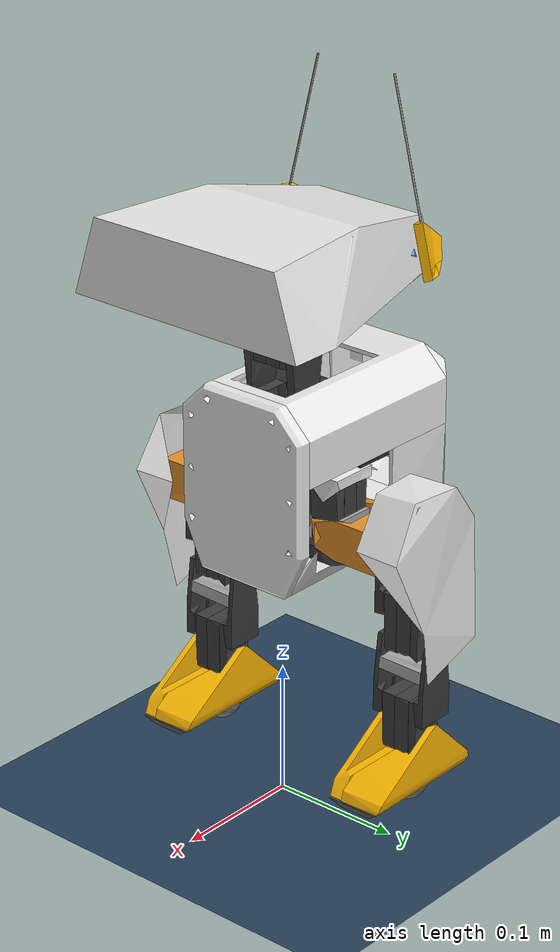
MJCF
<mujoco model="bd1 scene">
	<!-- 100 hz -->
	<include file="open_duck_mini_v2.xml" />
	<default>
		<!-- sliding friction, torsional friction, rolling friction -->
		<geom friction="1.5 0.01 0.0006"/>
	</default>
	<visual>
		<headlight diffuse="0.6 0.6 0.6" ambient="0.3 0.3 0.3" specular="0 0 0" />
		<rgba haze="0.15 0.25 0.35 1" />
		<global azimuth="150" elevation="-20" />
	</visual>
	<asset>
		<texture type="skybox" builtin="gradient" rgb1="0.3 0.5 0.7" rgb2="0 0 0" width="512" height="3072" />
		<texture type="2d" name="groundplane" builtin="checker" mark="edge" rgb1="0.2 0.3 0.4" rgb2="0.1 0.2 0.3" markrgb="0.8 0.8 0.8" width="300" height="300" />
		<material name="groundplane" texture="groundplane" texuniform="true" texrepeat="5 5" reflectance="0.2" />
	</asset>
	<worldbody>
		<light pos="0 0 3" dir="0 0 -1" directional="false" />
		<body name="floor">
			<geom pos="0 0 0" name="floor" size="0 0 .125" type="plane" material="groundplane" conaffinity="1" contype="1" />
		</body>
	</worldbody>
</mujoco>

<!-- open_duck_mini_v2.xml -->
<mujoco model="open_duck_mini_v2">

  <option iterations="1" ls_iterations="5">
    <flag eulerdamp="disable"/>
  </option>

  <compiler angle="radian"/>
  <asset>
    <mesh name="body_front" file="assets/body_front_s.stl" maxhullvert="20"/>
    <mesh name="usb_c_charger" file="assets/usb_c_charger.stl" maxhullvert="20"/>
    <mesh name="body_back" file="assets/body_back_s.stl" maxhullvert="20"/>
    <mesh name="body_middle_bottom" file="assets/body_middle_bottom_s.stl" maxhullvert="20"/>
    <mesh name="power_switch" file="assets/power_switch.stl" maxhullvert="20"/>
    <mesh name="bms" file="assets/bms.stl" maxhullvert="20"/>
    <mesh name="battery_pack_lid" file="assets/battery_pack_lid_s.stl" maxhullvert="20"/>
    <mesh name="body_middle_top" file="assets/body_middle_top_s.stl" maxhullvert="20"/>
    <mesh name="bno055" file="assets/bno055_s.stl" maxhullvert="20"/>
    <mesh name="roll_bearing" file="assets/roll_bearing.stl" maxhullvert="20"/>
    <mesh name="trunk_bottom" file="assets/trunk_bottom_s.stl" maxhullvert="20"/>
    <mesh name="trunk_top" file="assets/trunk_top_s.stl" maxhullvert="20"/>
    <mesh name="board" file="assets/board_s.stl" maxhullvert="20"/>
    <mesh name="cell" file="assets/cell_s.stl" maxhullvert="20"/>
    <mesh name="holder" file="assets/holder.stl" maxhullvert="20"/>
    <mesh name="wj-wk00-0123middlecase_56" file="assets/wj-wk00-0123middlecase_56_s.stl" maxhullvert="20"/>
    <mesh name="drive_palonier" file="assets/drive_palonier.stl" maxhullvert="20"/>
    <mesh name="wj-wk00-0124bottomcase_45" file="assets/wj-wk00-0124bottomcase_45_s.stl" maxhullvert="20"/>
    <mesh name="wj-wk00-0122topcabinetcase_95" file="assets/wj-wk00-0122topcabinetcase_95_s.stl" maxhullvert="20"/>
    <mesh name="passive_palonier" file="assets/passive_palonier.stl" maxhullvert="20"/>
    <mesh name="roll_motor_bottom" file="assets/roll_motor_bottom_s.stl" maxhullvert="20"/>
    <mesh name="roll_motor_top" file="assets/roll_motor_top_s.stl" maxhullvert="20"/>
    <mesh name="left_roll_to_pitch" file="assets/left_roll_to_pitch_s.stl" maxhullvert="20"/>
    <mesh name="left_cache" file="assets/left_cache_s.stl" maxhullvert="20"/>
    <mesh name="leg_spacer" file="assets/leg_spacer_s.stl" maxhullvert="20"/>
    <mesh name="left_knee_to_ankle_right_sheet" file="assets/left_knee_to_ankle_right_sheet_s.stl" maxhullvert="20"/>
    <mesh name="left_knee_to_ankle_left_sheet" file="assets/left_knee_to_ankle_left_sheet_s.stl" maxhullvert="20"/>
    <mesh name="foot_side" file="assets/foot_side_s.stl" maxhullvert="20"/>
    <mesh name="foot_bottom_tpu" file="assets/foot_bottom_tpu_s.stl" maxhullvert="20"/>
    <mesh name="foot_bottom_pla" file="assets/foot_bottom_pla_s.stl" maxhullvert="20"/>
    <mesh name="foot_top" file="assets/foot_top_s.stl" maxhullvert="20"/>
    <mesh name="right_roll_to_pitch" file="assets/right_roll_to_pitch_s.stl" maxhullvert="20"/>
    <mesh name="right_cache" file="assets/right_cache_s.stl" maxhullvert="20"/>
    <mesh name="neck_left_sheet" file="assets/neck_left_sheet_s.stl" maxhullvert="20"/>
    <mesh name="neck_right_sheet" file="assets/neck_right_sheet_s.stl" maxhullvert="20"/>
    <mesh name="head_pitch_to_yaw" file="assets/head_pitch_to_yaw_s.stl" maxhullvert="20"/>
    <mesh name="head_yaw_to_roll" file="assets/head_yaw_to_roll_s.stl" maxhullvert="20"/>
    <mesh name="head_bot_sheet" file="assets/head_bot_sheet_s.stl" maxhullvert="20"/>
    <mesh name="head" file="assets/head_s.stl" maxhullvert="20"/>
    <mesh name="head_roll_mount" file="assets/head_roll_mount_s.stl" maxhullvert="20"/>
    <mesh name="raspberrypizerow" file="assets/raspberrypizerow.stl" maxhullvert="20"/>
    <mesh name="sg90" file="assets/sg90_s.stl" maxhullvert="20"/>
    <mesh name="antenna" file="assets/antenna_s.stl" maxhullvert="20"/>
    <mesh name="left_antenna_holder" file="assets/left_antenna_holder_s.stl" maxhullvert="20"/>
    <mesh name="right_antenna_holder" file="assets/right_antenna_holder_s.stl" maxhullvert="20"/>

  </asset>
  <default>
    <geom contype="0" conaffinity="0"/>
    <joint damping="0.65" frictionloss="0.083" armature="0.027"/>
    <position kp="6.55" kv="0" forcerange="-3.57 3.57"/>
  </default>
  <contact>
    <exclude name="exclude1" body1="trunk_assembly" body2="neck_yaw_assembly"/>
    <exclude name="exclude2" body1="trunk_assembly" body2="hip_roll_assembly"/>
    <exclude name="exclude3" body1="trunk_assembly" body2="hip_roll_assembly_2"/>
    <exclude name="exclude4" body1="hip_roll_assembly" body2="left_roll_to_pitch_assembly"/>
    <exclude name="exclude5" body1="hip_roll_assembly_2" body2="right_roll_to_pitch_assembly"/>
    <exclude name="exclude6" body1="trunk_assembly" body2="left_roll_to_pitch_assembly"/>
    <exclude name="exclude7" body1="trunk_assembly" body2="right_roll_to_pitch_assembly"/>
    <exclude name="exclude8" body1="neck_yaw_assembly" body2="head_pitch_to_yaw"/>
    <exclude name="exclude9" body1="neck_yaw_assembly" body2="head_assembly"/>
    <exclude name="exclude10" body1="head_pitch_to_yaw" body2="head_assembly"/>
  </contact>
  <worldbody>
    <body name="base" pos="0 0 0.22">
      <freejoint />
      <site name="imu" pos="-0.08 -0.0 0.05"/>
      <camera name="front" pos="1.210 -0.435 0.32" xyaxes="0.342 0.940 0.000 -0.321 0.117 0.940" mode="trackcom"/>
      <camera name="track" pos="0.805 -1.105 0.2" xyaxes="0.814 0.580 0.000 -0.140 0.196 0.971" mode="trackcom"/>
      <body name="trunk_assembly">
        <inertial pos="-0.0483259 -9.97823e-05 0.0384971" quat="0.505499 0.490695 0.496207 0.507413" mass="0.698526" diaginertia="0.00344489 0.00292719 0.00167606"/>
        <geom pos="-0.019 0 0.0648909" type="mesh" rgba="0.917647 0.917647 0.917647 1" mesh="body_front"/>
        <geom pos="-0.019 0 0.0648909" type="mesh" rgba="0.917647 0.917647 0.917647 1" mesh="body_back"/>
        <geom pos="-0.019 0 0.0648909" type="mesh" rgba="0.917647 0.917647 0.917647 1" mesh="body_middle_bottom"/>
        <geom pos="-0.019 0 0.0648909" type="mesh" rgba="0.917647 0.917647 0.917647 1" mesh="body_middle_top"/>

        <geom pos="-0.019 0 0.0648909" type="mesh" rgba="0.180392 0.180392 0.180392 1" mesh="trunk_bottom"/>
        <geom pos="-0.019 0 0.0648909" type="mesh" rgba="0.180392 0.180392 0.180392 1" mesh="trunk_top"/>
        <geom pos="-0.06349 0.0165 0.0603909" quat="0 0 0 -1" type="mesh" rgba="0 0.501961 0 1" mesh="board"/>

        <geom pos="0.001 0.0097 0.0645009" quat="0.707107 0 0.707107 0" type="mesh" rgba="0.247059 0.243137 0.243137 1" mesh="wj-wk00-0123middlecase_56"/>
        <geom pos="0.001 0.0097 0.0645009" quat="0.707107 0 0.707107 0" type="mesh" rgba="0.247059 0.243137 0.243137 1" mesh="wj-wk00-0124bottomcase_45"/>
        <geom pos="0.001 0.0097 0.0645009" quat="0.707107 0 0.707107 0" type="mesh" rgba="0.247059 0.243137 0.243137 1" mesh="wj-wk00-0122topcabinetcase_95"/>
        <geom pos="-0.0445 -0.035 0.0553909" quat="0 0 -0.707107 0.707107" type="mesh" rgba="0.247059 0.243137 0.243137 1" mesh="wj-wk00-0123middlecase_56"/>
        <geom pos="-0.0445 -0.035 0.0553909" quat="0 0 -0.707107 0.707107" type="mesh" rgba="0.247059 0.243137 0.243137 1" mesh="wj-wk00-0124bottomcase_45"/>
        <geom pos="-0.0445 -0.035 0.0553909" quat="0 0 -0.707107 0.707107" type="mesh" rgba="0.247059 0.243137 0.243137 1" mesh="wj-wk00-0122topcabinetcase_95"/>
        <geom pos="-0.0445 0.035 0.0553909" quat="0 0 0.707107 -0.707107" type="mesh" rgba="0.247059 0.243137 0.243137 1" mesh="wj-wk00-0123middlecase_56"/>
        <geom pos="-0.0445 0.035 0.0553909" quat="0 0 0.707107 -0.707107" type="mesh" rgba="0.247059 0.243137 0.243137 1" mesh="wj-wk00-0124bottomcase_45"/>
        <geom pos="-0.0445 0.035 0.0553909" quat="0 0 0.707107 -0.707107" type="mesh" rgba="0.247059 0.243137 0.243137 1" mesh="wj-wk00-0122topcabinetcase_95"/>
        <body name="trunk" pos="-0.024 0 0.0881909">
          <inertial pos="0 0 0" mass="1e-09" diaginertia="0 0 0"/>
        </body>
        <body name="hip_roll_assembly" pos="-0.019 0.035 0.0459409" quat="1 0 0 0">
          <inertial pos="0.000795081 -5.46541e-06 -0.03306" quat="0.70723 0.0130259 0.0134112 0.706737" mass="0.06648" diaginertia="2.81818e-05 2.44554e-05 1.42544e-05"/>
          <joint name="left_hip_yaw" pos="0 0 0" axis="0 0 1" range="-0.523599 0.523599" />
          <geom pos="0 -0.035 0.01905" quat="1 0 0 0" type="mesh" rgba="0.647059 0.647059 0.647059 1" mesh="roll_motor_bottom"/>
          <geom pos="0 -0.035 0.01905" type="mesh" rgba="0.901961 0.901961 0.901961 1" mesh="roll_motor_top"/>
          <geom pos="0.0096 0 -0.020515" quat="0.5 -0.5 -0.5 -0.5" type="mesh" rgba="0.247059 0.243137 0.243137 1" mesh="wj-wk00-0123middlecase_56"/>
          <geom pos="0.0096 0 -0.020515" quat="0.5 -0.5 -0.5 -0.5" type="mesh" rgba="0.247059 0.243137 0.243137 1" mesh="wj-wk00-0124bottomcase_45"/>
          <geom pos="0.0096 0 -0.020515" quat="0.5 -0.5 -0.5 -0.5" type="mesh" rgba="0.247059 0.243137 0.243137 1" mesh="wj-wk00-0122topcabinetcase_95"/>
          <body name="left_roll_to_pitch_assembly" pos="0.01905 0 -0.046015" quat="0.5 -0.5 -0.5 0.5">
            <inertial pos="0.0508042 -0.00041105 0.0204704" quat="0.549997 0.448819 0.449902 0.541898" mass="0.07516" diaginertia="4.13874e-05 2.82416e-05 2.5117e-05"/>
            <joint name="left_hip_roll" pos="0 0 0" axis="0 0 1" range="-0.436332 0.436332" />
            <geom pos="-0.035 -0.065 0.01905" quat="0.5 0.5 0.5 -0.5" type="mesh" rgba="0.909804 0.572549 0.164706 1" mesh="left_roll_to_pitch"/>
            <geom pos="0.0647 0 0.00961" quat="0.5 0.5 0.5 -0.5" type="mesh" rgba="0.247059 0.243137 0.243137 1" mesh="wj-wk00-0123middlecase_56"/>
            <geom pos="0.0647 0 0.00961" quat="0.5 0.5 0.5 -0.5" type="mesh" rgba="0.247059 0.243137 0.243137 1" mesh="wj-wk00-0124bottomcase_45"/>
            <geom pos="0.0647 0 0.00961" quat="0.5 0.5 0.5 -0.5" type="mesh" rgba="0.247059 0.243137 0.243137 1" mesh="wj-wk00-0122topcabinetcase_95"/>
            <body name="knee_and_ankle_assembly" pos="0.07415 0 0.03511" quat="0 0.707107 0 -0.707107">
              <inertial pos="0.00253369 -0.0390636 0.0102776" quat="0.576793 0.413738 -0.51125 0.484515" mass="0.12407" diaginertia="0.000228502 0.000216625 7.02746e-05"/>
              <joint name="left_hip_pitch" pos="0 0 0" axis="0 0 1" range="-1.22173 0.523599" />
              <geom pos="0.01606 0.065 0.10915" quat="0.707107 -0.707107 0 0" type="mesh" rgba="0.917647 0.917647 0.917647 1" mesh="left_cache"/>
              <geom pos="0.01606 0.14365 0.10925" quat="0.707107 -0.707107 0 0" type="mesh" rgba="0.647059 0.647059 0.647059 1" mesh="leg_spacer"/>
              <geom pos="0.01606 0.14365 0.10915" quat="0.707107 -0.707107 0 0" type="mesh" rgba="0.223529 0.219608 0.219608 1" mesh="left_knee_to_ankle_right_sheet"/>
              <geom pos="0.01606 0.14365 0.10915" quat="0.707107 -0.707107 0 0" type="mesh" rgba="0.223529 0.219608 0.219608 1" mesh="left_knee_to_ankle_left_sheet"/>
              <geom pos="0 -0.05315 0.00955" quat="0.5 -0.5 -0.5 0.5" type="mesh" rgba="0.247059 0.243137 0.243137 1" mesh="wj-wk00-0123middlecase_56"/>
              <geom pos="0 -0.05315 0.00955" quat="0.5 -0.5 -0.5 0.5" type="mesh" rgba="0.247059 0.243137 0.243137 1" mesh="wj-wk00-0124bottomcase_45"/>
              <geom pos="0 -0.05315 0.00955" quat="0.5 -0.5 -0.5 0.5" type="mesh" rgba="0.247059 0.243137 0.243137 1" mesh="wj-wk00-0122topcabinetcase_95"/>
              <body name="knee_and_ankle_assembly_2" pos="0 -0.07865 0.0001">
                <inertial pos="5.01859e-06 -0.0577465 0.0181136" quat="0.708422 0.705789 1.07934e-05 0.00022447" mass="0.07259" diaginertia="4.99575e-05 4.23935e-05 1.8727e-05"/>
                <joint name="left_knee" pos="0 0 0" axis="0 0 1" range="-1.5708 1.5708" />
                <geom pos="0.01606 0.14365 0.10925" quat="0.707107 -0.707107 0 0" type="mesh" rgba="0.647059 0.647059 0.647059 1" mesh="leg_spacer"/>
                <geom pos="0.01606 0.14365 0.10915" quat="0.707107 -0.707107 0 0" type="mesh" rgba="0.223529 0.219608 0.219608 1" mesh="left_knee_to_ankle_right_sheet"/>
                <geom pos="0.01606 0.14365 0.10915" quat="0.707107 -0.707107 0 0" type="mesh" rgba="0.223529 0.219608 0.219608 1" mesh="left_knee_to_ankle_left_sheet"/>
                <geom pos="0 -0.05315 0.00955" quat="0.5 -0.5 -0.5 0.5" type="mesh" rgba="0.247059 0.243137 0.243137 1" mesh="wj-wk00-0123middlecase_56"/>
                <geom pos="0 -0.05315 0.00955" quat="0.5 -0.5 -0.5 0.5" type="mesh" rgba="0.247059 0.243137 0.243137 1" mesh="wj-wk00-0124bottomcase_45"/>
                <geom pos="0 -0.05315 0.00955" quat="0.5 -0.5 -0.5 0.5" type="mesh" rgba="0.247059 0.243137 0.243137 1" mesh="wj-wk00-0122topcabinetcase_95"/>
                <body name="foot_assembly" pos="0 -0.07865 0.0001">
                  <inertial pos="0.0110718 -0.0246608 0.0190626" quat="0.506106 0.51004 0.489653 0.49392" mass="0.07524" diaginertia="6.74949e-05 6.06095e-05 1.86965e-05"/>
                  <joint name="left_ankle" pos="0 0 0" axis="0 0 1" range="-1.5708 1.5708" />
                  <geom pos="0.01606 0.2223 0.10905" quat="0.707107 -0.707107 0 0" type="mesh" rgba="0.980392 0.713726 0.00392157 1" mesh="foot_side"/>
                  <geom pos="0.01656 0.2228 0.10955" quat="0.707107 -0.707107 0 0" type="mesh" rgba="0.305882 0.298039 0.278431 1" mesh="foot_bottom_tpu" name="left_foot_bottom_tpu" contype="0" conaffinity="1" solimp="0.015 1 0.031" friction="0.8 0.02 0.01"/>
                  <geom pos="0.01656 0.2228 0.10955" quat="0.707107 -0.707107 0 0" type="mesh" rgba="0.305882 0.298039 0.278431 1" mesh="foot_bottom_pla" />
                  <geom pos="0.01606 0.2223 0.10905" quat="0.707107 -0.707107 0 0" type="mesh" rgba="0.980392 0.713726 0.00392157 1" mesh="foot_top"/>
                  <body name="left_foot" pos="0.0005 -0.036225 0.01955" quat="0.707107 -0.707107 0 0">
                    <inertial pos="0 0 0" mass="1e-09" diaginertia="0 0 0"/>
                  </body>
                  <site name="left_foot" size="0.015" pos="0.00049999999999996574962 -0.036224999999999729638 0.01955000000000034488"/>
                </body>
              </body>
            </body>
          </body>
        </body>
        <body name="neck_pitch_assembly" pos="0.001 0.01915 0.0900009" quat="0.707107 0.707107 0 0">
          <inertial pos="-5.63137e-06 0.0492968 0.0181786" quat="0.70651 0.707703 0.000283172 6.23387e-05" mass="0.06618" diaginertia="3.49456e-05 2.80043e-05 1.70231e-05"/>
          <joint name="neck_pitch" pos="0 0 0" axis="0 0 1" range="-0.349066 1.13446" />
          <geom pos="-0.02 -0.02511 0.01905" quat="0.707107 -0.707107 0 0" type="mesh" rgba="0.223529 0.219608 0.219608 1" mesh="neck_left_sheet"/>
          <geom pos="-0.02 -0.02511 0.01905" quat="0.707107 -0.707107 0 0" type="mesh" rgba="0.223529 0.219608 0.219608 1" mesh="neck_right_sheet"/>
          <geom pos="0 0.0405 0.00945" quat="0.5 -0.5 0.5 -0.5" type="mesh" rgba="0.247059 0.243137 0.243137 1" mesh="wj-wk00-0123middlecase_56"/>
          <geom pos="0 0.0405 0.00945" quat="0.5 -0.5 0.5 -0.5" type="mesh" rgba="0.247059 0.243137 0.243137 1" mesh="wj-wk00-0124bottomcase_45"/>
          <geom pos="0 0.0405 0.00945" quat="0.5 -0.5 0.5 -0.5" type="mesh" rgba="0.247059 0.243137 0.243137 1" mesh="wj-wk00-0122topcabinetcase_95"/>
          <body name="head_pitch_to_yaw" pos="0 0.066 0" quat="1 0 0 0">
            <inertial pos="-0.00766247 0.026015 0.0186681" quat="0.692632 0.709794 0.0901532 0.091239" mass="0.0169378" diaginertia="9.7861e-06 8.03124e-06 4.28979e-06"/>
            <joint name="head_pitch" pos="0 0 0" axis="0 0 1" range="-0.785398 0.785398" />
            <geom pos="-0.02 -0.09111 0.01905" quat="0.707107 -0.707107 0 0" type="mesh" rgba="0.4 0.4 0.4 1" mesh="head_pitch_to_yaw"/>
            <body name="neck_yaw_assembly" pos="0 0.057 0.01905" quat="0.707107 -0.707107 0 0">
              <inertial pos="0.00412907 3.95745e-06 -0.0222828" quat="-0.00110425 0.66693 -0.00105488 0.745118" mass="0.0918099" diaginertia="7.08927e-05 6.94935e-05 3.06805e-05"/>
              <joint name="head_yaw" pos="0 0 0" axis="0 0 1" range="-2.79253 2.79253" />
              <geom pos="-0.02 0 -0.14821" quat="1 0 0 0" type="mesh" rgba="0.647059 0.647059 0.647059 1" mesh="head_yaw_to_roll"/>
              <geom pos="0.0255 0 -0.00945" quat="0.707107 0.707107 0 0" type="mesh" rgba="0.247059 0.243137 0.243137 1" mesh="wj-wk00-0123middlecase_56"/>
              <geom pos="0.0255 0 -0.00945" quat="0.707107 0.707107 0 0" type="mesh" rgba="0.247059 0.243137 0.243137 1" mesh="wj-wk00-0124bottomcase_45"/>
              <geom pos="0.0255 0 -0.00945" quat="0.707107 0.707107 0 0" type="mesh" rgba="0.247059 0.243137 0.243137 1" mesh="wj-wk00-0122topcabinetcase_95"/>
              <body name="head_assembly" pos="0.04095 0 -0.01915" quat="0.707107 0 -0.707107 0">
                <inertial pos="0.00761779 0.00018098 0.0242575" quat="0.999221 -0.0025776 -0.0393431 -0.00138049" mass="0.352583" diaginertia="0.00207104 0.00144128 0.000909578"/>
                <joint name="head_roll" pos="0 0 0" axis="0 0 1" range="-0.523599 0.523599" />
                <geom pos="-0.12906 0 0.06095" quat="0.707107 0 0.707107 0" type="mesh" rgba="0.411765 0.411765 0.411765 1" mesh="head_bot_sheet"/>
                <geom pos="-0.12906 0 0.06095" quat="0.707107 0 0.707107 0" type="mesh" rgba="0.917647 0.917647 0.917647 1" mesh="head"/>
                <geom pos="-0.12906 0 0.06095" quat="0.707107 0 0.707107 0" type="mesh" rgba="0.501961 0.501961 0.501961 1" mesh="head_roll_mount"/>
                <geom pos="-0.00624594 0.0331408 0.102812" quat="0.488321 -0.47889 -0.372991 -0.626964" type="mesh" rgba="0.435294 0.670588 0.976471 1" mesh="sg90"/>
                <geom pos="-0.00624594 -0.0331408 0.102812" quat="0.488321 0.47889 -0.372991 0.626964" type="mesh" rgba="0.435294 0.670588 0.976471 1" mesh="sg90"/>
                <geom pos="0.0255 0 -0.00945" quat="0.707107 0.707107 0 0" type="mesh" rgba="0.247059 0.243137 0.243137 1" mesh="wj-wk00-0123middlecase_56"/>
                <geom pos="0.0255 0 -0.00945" quat="0.707107 0.707107 0 0" type="mesh" rgba="0.247059 0.243137 0.243137 1" mesh="wj-wk00-0124bottomcase_45"/>
                <geom pos="0.0255 0 -0.00945" quat="0.707107 0.707107 0 0" type="mesh" rgba="0.247059 0.243137 0.243137 1" mesh="wj-wk00-0122topcabinetcase_95"/>
                <body name="head" pos="0.04245 0 0.03595" quat="0.707107 0 0.707107 0">
                  <inertial pos="0 0 0" mass="1e-09" diaginertia="0 0 0"/>
                </body>
                <body name="left_antenna_holder" pos="0.000704069 0.0606628 0.116435" quat="-0.372991 -0.626964 -0.488321 0.47889">
                  <inertial pos="-0.00493985 0.00813032 -0.00233374" quat="0.51481 0.48387 -0.510153 0.490495" mass="0.00421629" diaginertia="3.80836e-06 3.59678e-06 2.45273e-07"/>
                  <joint name="left_antenna" pos="0 0 0" axis="0 0 1" range="-1.5708 1.5708" />
                  <geom pos="0.0791392 -0.110974 -0.079315" quat="0.781957 -0.60904 -0.104704 -0.0815507" type="mesh" rgba="0.647059 0.647059 0.647059 1" mesh="antenna"/>
                  <geom pos="0.0296981 -0.110962 0.101994" quat="0.60904 -0.781957 -0.0815507 -0.104704" type="mesh" rgba="0.980392 0.713726 0.00392157 1" mesh="left_antenna_holder"/>
                </body>
                <body name="right_antenna_holder" pos="0.000704069 -0.0606628 0.116435" quat="-0.372991 0.626964 -0.488321 -0.47889">
                  <inertial pos="-0.00493986 -0.00826213 -0.00233374" quat="0.483867 0.514746 -0.490555 0.510162" mass="0.00421629" diaginertia="3.86998e-06 3.6585e-06 2.45146e-07"/>
                  <joint name="right_antenna" pos="0 0 0" axis="0 0 1" range="-1.5708 1.5708" />
                  <geom pos="0.0296981 0.110962 0.101994" quat="0.60904 0.781957 -0.0815507 0.104704" type="mesh" rgba="0.980392 0.713726 0.00392157 1" mesh="right_antenna_holder"/>
                  <geom pos="0.0296981 0.109951 0.101994" quat="0.60904 0.781957 -0.0815507 0.104704" type="mesh" rgba="0.647059 0.647059 0.647059 1" mesh="antenna"/>
                </body>
              </body>
            </body>
          </body>
        </body>
        <body name="hip_roll_assembly_2" pos="-0.019 -0.035 0.0459409" quat="1 0 0 0">
          <inertial pos="0.000795081 -5.46541e-06 -0.03306" quat="0.70723 0.0130259 0.0134112 0.706737" mass="0.06648" diaginertia="2.81818e-05 2.44554e-05 1.42544e-05"/>
          <joint name="right_hip_yaw" pos="0 0 0" axis="0 0 1" range="-0.523599 0.523599" />
          <geom pos="0 -0.035 0.01905" type="mesh" rgba="0.647059 0.647059 0.647059 1" mesh="roll_motor_bottom"/>
          <geom pos="0 -0.035 0.01905" type="mesh" rgba="0.901961 0.901961 0.901961 1" mesh="roll_motor_top"/>
          <geom pos="0.0096 0 -0.020515" quat="0.5 -0.5 -0.5 -0.5" type="mesh" rgba="0.247059 0.243137 0.243137 1" mesh="wj-wk00-0123middlecase_56"/>
          <geom pos="0.0096 0 -0.020515" quat="0.5 -0.5 -0.5 -0.5" type="mesh" rgba="0.247059 0.243137 0.243137 1" mesh="wj-wk00-0124bottomcase_45"/>
          <geom pos="0.0096 0 -0.020515" quat="0.5 -0.5 -0.5 -0.5" type="mesh" rgba="0.247059 0.243137 0.243137 1" mesh="wj-wk00-0122topcabinetcase_95"/>
          <body name="right_roll_to_pitch_assembly" pos="0.01905 0 -0.046015" quat="0.5 -0.5 -0.5 0.5">
            <inertial pos="-0.0508042 -0.000420742 0.0204704" quat="0.449467 0.542039 0.549858 0.449254" mass="0.07516" diaginertia="4.13872e-05 2.82413e-05 2.51163e-05"/>
            <joint name="right_hip_roll" pos="0 0 0" axis="0 0 1" range="-0.436332 0.436332" />
            <geom pos="0.035 -0.065 0.01905" quat="0.5 0.5 0.5 -0.5" type="mesh" rgba="0.909804 0.572549 0.164706 1" mesh="right_roll_to_pitch"/>
            <geom pos="-0.0647 0 0.00961" quat="0.5 -0.5 0.5 0.5" type="mesh" rgba="0.247059 0.243137 0.243137 1" mesh="wj-wk00-0123middlecase_56"/>
            <geom pos="-0.0647 0 0.00961" quat="0.5 -0.5 0.5 0.5" type="mesh" rgba="0.247059 0.243137 0.243137 1" mesh="wj-wk00-0124bottomcase_45"/>
            <geom pos="-0.0647 0 0.00961" quat="0.5 -0.5 0.5 0.5" type="mesh" rgba="0.247059 0.243137 0.243137 1" mesh="wj-wk00-0122topcabinetcase_95"/>
            <body name="knee_and_ankle_assembly_3" pos="-0.07415 0 0.03511" quat="0.707107 0 0.707107 0">
              <inertial pos="0.00253369 0.0390636 0.010809" quat="0.411107 0.577419 -0.487141 0.510169" mass="0.12407" diaginertia="0.000228782 0.00021758 7.09527e-05"/>
              <joint name="right_hip_pitch" pos="0 0 0" axis="0 0 1" range="-0.523599 1.22173" />
              <geom pos="0.01606 -0.065 0.1092" quat="0.707107 0.707107 0 0" type="mesh" rgba="0.917647 0.917647 0.917647 1" mesh="right_cache"/>
              <geom pos="0.01606 -0.14365 -0.07215" quat="0.707107 0.707107 0 0" type="mesh" rgba="0.647059 0.647059 0.647059 1" mesh="leg_spacer"/>
              <geom pos="0.01606 -0.14365 -0.07205" quat="0.707107 0.707107 0 0" type="mesh" rgba="0.223529 0.219608 0.219608 1" mesh="left_knee_to_ankle_right_sheet"/>
              <geom pos="0.01606 -0.14365 -0.07205" quat="0.707107 0.707107 0 0" type="mesh" rgba="0.223529 0.219608 0.219608 1" mesh="left_knee_to_ankle_left_sheet"/>
              <geom pos="0 0.05315 0.02755" quat="0.5 0.5 -0.5 -0.5" type="mesh" rgba="0.247059 0.243137 0.243137 1" mesh="wj-wk00-0123middlecase_56"/>
              <geom pos="0 0.05315 0.02755" quat="0.5 0.5 -0.5 -0.5" type="mesh" rgba="0.247059 0.243137 0.243137 1" mesh="wj-wk00-0124bottomcase_45"/>
              <geom pos="0 0.05315 0.02755" quat="0.5 0.5 -0.5 -0.5" type="mesh" rgba="0.247059 0.243137 0.243137 1" mesh="wj-wk00-0122topcabinetcase_95"/>
              <body name="knee_and_ankle_assembly_4" pos="0 0.07865 0.037" quat="0 1 0 0">
                <inertial pos="5.01859e-06 -0.0577465 0.0181136" quat="0.708422 0.705789 1.07934e-05 0.00022447" mass="0.07259" diaginertia="4.99575e-05 4.23935e-05 1.8727e-05"/>
                <joint name="right_knee" pos="0 0 0" axis="0 0 1" range="-1.5708 1.5708" />
                <geom pos="0.01606 0.14365 0.10925" quat="0.707107 -0.707107 0 0" type="mesh" rgba="0.647059 0.647059 0.647059 1" mesh="leg_spacer"/>
                <geom pos="0.01606 0.14365 0.10915" quat="0.707107 -0.707107 0 0" type="mesh" rgba="0.223529 0.219608 0.219608 1" mesh="left_knee_to_ankle_right_sheet"/>
                <geom pos="0.01606 0.14365 0.10915" quat="0.707107 -0.707107 0 0" type="mesh" rgba="0.223529 0.219608 0.219608 1" mesh="left_knee_to_ankle_left_sheet"/>
                <geom pos="0 -0.05315 0.00955" quat="0.5 -0.5 -0.5 0.5" type="mesh" rgba="0.247059 0.243137 0.243137 1" mesh="wj-wk00-0123middlecase_56"/>
                <geom pos="0 -0.05315 0.00955" quat="0.5 -0.5 -0.5 0.5" type="mesh" rgba="0.247059 0.243137 0.243137 1" mesh="wj-wk00-0124bottomcase_45"/>
                <geom pos="0 -0.05315 0.00955" quat="0.5 -0.5 -0.5 0.5" type="mesh" rgba="0.247059 0.243137 0.243137 1" mesh="wj-wk00-0122topcabinetcase_95"/>
                <body name="foot_assembly_2" pos="0 -0.07865 0.0001">
                  <inertial pos="0.0110718 -0.0246608 0.0190626" quat="0.506106 0.51004 0.489653 0.49392" mass="0.07524" diaginertia="6.74949e-05 6.06095e-05 1.86965e-05"/>
                  <joint name="right_ankle" pos="0 0 0" axis="0 0 1" range="-1.5708 1.5708" />
                  <geom pos="0.01606 0.2223 0.10905" quat="0.707107 -0.707107 0 0" type="mesh" rgba="0.980392 0.713726 0.00392157 1" mesh="foot_side"/>
                  <geom pos="0.01656 0.2228 0.10955" quat="0.707107 -0.707107 0 0" type="mesh" rgba="0.305882 0.298039 0.278431 1" mesh="foot_bottom_tpu" name="right_foot_bottom_tpu" contype="0" conaffinity="1" solimp="0.015 1 0.031" friction="0.8 0.02 0.01"/>
                  <geom pos="0.01656 0.2228 0.10955" quat="0.707107 -0.707107 0 0" type="mesh" rgba="0.305882 0.298039 0.278431 1" mesh="foot_bottom_pla" />
                  <geom pos="0.01606 0.2223 0.10905" quat="0.707107 -0.707107 0 0" type="mesh" rgba="0.980392 0.713726 0.00392157 1" mesh="foot_top"/>
                  <body name="right_foot" pos="0.0005 -0.036225 0.01955" quat="0.707107 -0.707107 0 0">
                    <inertial pos="0 0 0" mass="1e-09" diaginertia="0 0 0"/>
                  </body>
                  <site name="right_foot" size="0.015" pos="0.0005000000000002155498 -0.036224999999999840661 0.019550000000000664069"/>
                </body>
              </body>
            </body>
          </body>
        </body>
      </body>
    </body>
  </worldbody>
  <actuator>
    <position name="left_hip_yaw"    joint="left_hip_yaw"    inheritrange="1"/>
    <position name="left_hip_roll"   joint="left_hip_roll"   inheritrange="1"/>
    <position name="left_hip_pitch"  joint="left_hip_pitch"  inheritrange="1"/>
    <position name="left_knee"       joint="left_knee"       inheritrange="1"/>
    <position name="left_ankle"      joint="left_ankle"      inheritrange="1"/>
    <position name="neck_pitch"      joint="neck_pitch"      inheritrange="1"/>
    <position name="head_pitch"      joint="head_pitch"      inheritrange="1"/>
    <position name="head_yaw"        joint="head_yaw"        inheritrange="1"/>
    <position name="head_roll"       joint="head_roll"       inheritrange="1"/>
    <position name="left_antenna"    joint="left_antenna"    inheritrange="1"/>
    <position name="right_antenna"   joint="right_antenna"   inheritrange="1"/>
    <position name="right_hip_yaw"   joint="right_hip_yaw"   inheritrange="1"/>
    <position name="right_hip_roll"  joint="right_hip_roll"  inheritrange="1"/>
    <position name="right_hip_pitch" joint="right_hip_pitch" inheritrange="1"/>
    <position name="right_knee"      joint="right_knee"      inheritrange="1"/>
    <position name="right_ankle"     joint="right_ankle"     inheritrange="1"/>
  </actuator>
  <sensor>
    <gyro site="imu" name="gyro"/>
    <velocimeter site="imu" name="local_linvel"/>
    <accelerometer site="imu" name="accelerometer"/>
    <framepos objtype="site" objname="imu" name="position"/>
    <framezaxis objtype="site" objname="imu" name="upvector"/>
    <framexaxis objtype="site" objname="imu" name="forwardvector"/>
    <framelinvel objtype="site" objname="imu" name="global_linvel"/>
    <frameangvel objtype="site" objname="imu" name="global_angvel"/>
    <framequat objtype="site" objname="imu" name="orientation"/>
    <framelinvel objtype="site" objname="right_foot" name="right_foot_global_linvel"/>
    <framelinvel objtype="site" objname="left_foot" name="left_foot_global_linvel"/>
  </sensor>
</mujoco>
